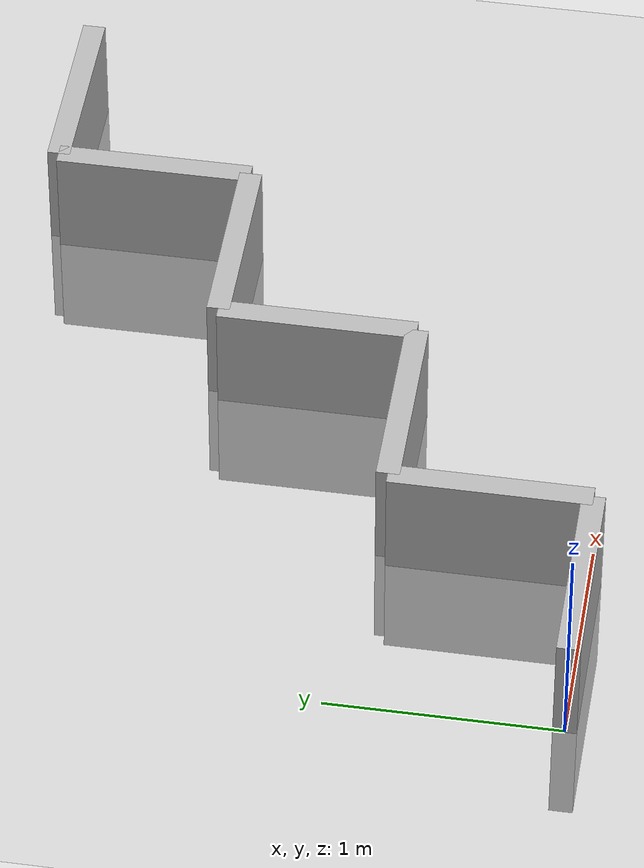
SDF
<?xml version="1.0" ?>
<sdf version="1.6">
  <world name="default">
    <include>
      <uri>model://ground_plane</uri>
    </include>
    <include>
      <uri>model://sun</uri>
    </include>

    <model name="wall_0">
      <static>true</static>
      <link name="link">
        <pose>0.42857142857142855 0 0 0 0 0</pose>
        <collision name="collision">
          <geometry>
            <box>
              <size>0.8571428571428571 0.1 1.0</size>
            </box>
          </geometry>
        </collision>
        <visual name="visual">
          <geometry>
            <box>
              <size>0.8571428571428571 0.1 1.0</size>
            </box>
          </geometry>
        </visual>
      </link>
    </model>

    <model name="wall_1">
      <static>true</static>
      <link name="link">
        <pose>0.8571428571428571 0.42857142857142855 0 0 0 1.57</pose>
        <collision name="collision">
          <geometry>
            <box>
              <size>0.8571428571428571 0.1 1.0</size>
            </box>
          </geometry>
        </collision>
        <visual name="visual">
          <geometry>
            <box>
              <size>0.8571428571428571 0.1 1.0</size>
            </box>
          </geometry>
        </visual>
      </link>
    </model>

    <model name="wall_2">
      <static>true</static>
      <link name="link">
        <pose>1.2857142857142856 0.8571428571428571 0 0 0 0</pose>
        <collision name="collision">
          <geometry>
            <box>
              <size>0.8571428571428571 0.1 1.0</size>
            </box>
          </geometry>
        </collision>
        <visual name="visual">
          <geometry>
            <box>
              <size>0.8571428571428571 0.1 1.0</size>
            </box>
          </geometry>
        </visual>
      </link>
    </model>

    <model name="wall_3">
      <static>true</static>
      <link name="link">
        <pose>1.7142857142857142 1.2857142857142856 0 0 0 1.57</pose>
        <collision name="collision">
          <geometry>
            <box>
              <size>0.8571428571428571 0.1 1.0</size>
            </box>
          </geometry>
        </collision>
        <visual name="visual">
          <geometry>
            <box>
              <size>0.8571428571428571 0.1 1.0</size>
            </box>
          </geometry>
        </visual>
      </link>
    </model>

    <model name="wall_4">
      <static>true</static>
      <link name="link">
        <pose>2.142857142857143 1.7142857142857142 0 0 0 0</pose>
        <collision name="collision">
          <geometry>
            <box>
              <size>0.8571428571428571 0.1 1.0</size>
            </box>
          </geometry>
        </collision>
        <visual name="visual">
          <geometry>
            <box>
              <size>0.8571428571428571 0.1 1.0</size>
            </box>
          </geometry>
        </visual>
      </link>
    </model>

    <model name="wall_5">
      <static>true</static>
      <link name="link">
        <pose>2.571428571428571 2.142857142857143 0 0 0 1.57</pose>
        <collision name="collision">
          <geometry>
            <box>
              <size>0.8571428571428571 0.1 1.0</size>
            </box>
          </geometry>
        </collision>
        <visual name="visual">
          <geometry>
            <box>
              <size>0.8571428571428571 0.1 1.0</size>
            </box>
          </geometry>
        </visual>
      </link>
    </model>

    <model name="wall_6">
      <static>true</static>
      <link name="link">
        <pose>2.9999999999999996 2.571428571428571 0 0 0 0</pose>
        <collision name="collision">
          <geometry>
            <box>
              <size>0.8571428571428571 0.1 1.0</size>
            </box>
          </geometry>
        </collision>
        <visual name="visual">
          <geometry>
            <box>
              <size>0.8571428571428571 0.1 1.0</size>
            </box>
          </geometry>
        </visual>
      </link>
    </model>

  </world>
</sdf>
